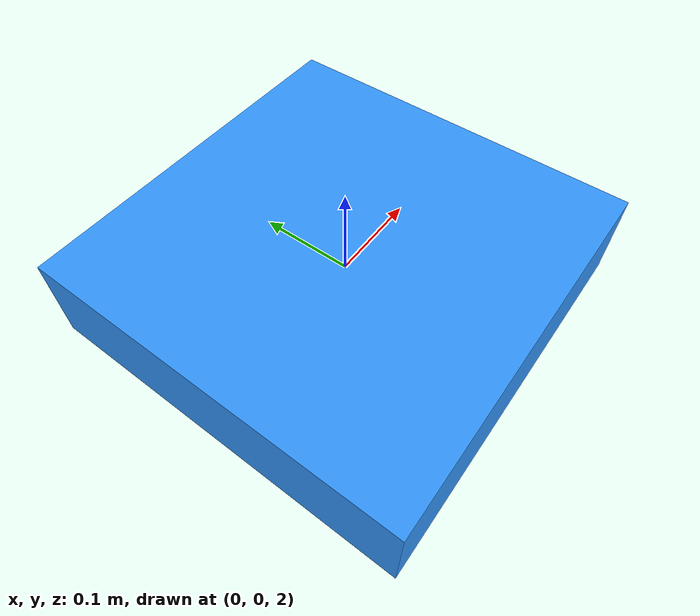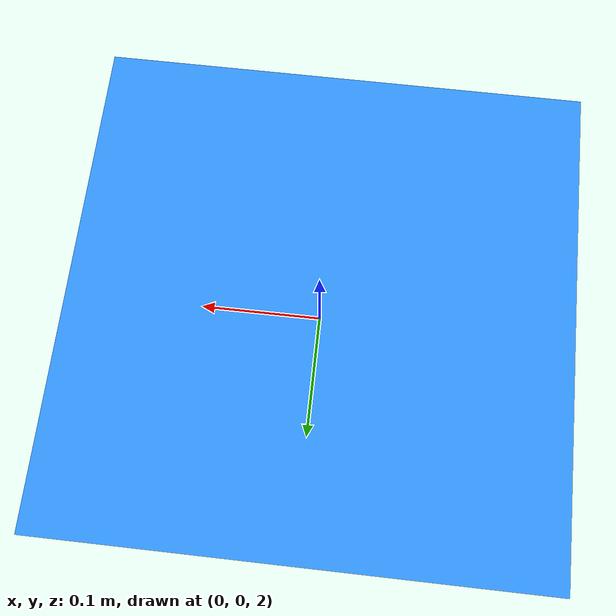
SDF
<?xml version="1.0"?>
<sdf version="1.10">
  <world name="aegisfleet_base">

    <plugin filename="gz-sim-physics-system"
            name="gz::sim::systems::Physics"/>
    <plugin filename="gz-sim-user-commands-system"
            name="gz::sim::systems::UserCommands"/>
    <plugin filename="gz-sim-scene-broadcaster-system"
            name="gz::sim::systems::SceneBroadcaster"/>
    <plugin filename="gz-sim-sensors-system"
            name="gz::sim::systems::Sensors">
      <render_engine>ogre2</render_engine>
    </plugin>

    <light type="directional" name="sun">
      <cast_shadows>true</cast_shadows>
      <pose>0 0 10 0 0 0</pose>
      <diffuse>1 1 1 1</diffuse>
      <direction>-0.5 0.1 -0.9</direction>
    </light>

    <model name="ground_plane">
      <static>true</static>
      <link name="link">
        <collision name="collision">
          <geometry>
            <plane><normal>0 0 1</normal><size>200 200</size></plane>
          </geometry>
        </collision>
        <visual name="visual">
          <geometry>
            <plane><normal>0 0 1</normal><size>200 200</size></plane>
          </geometry>
          <material>
            <ambient>0.4 0.4 0.4 1</ambient>
            <diffuse>0.4 0.4 0.4 1</diffuse>
          </material>
        </visual>
      </link>
    </model>

    <include>
      <uri>model://uav</uri>
      <name>uav_0</name>
      <pose>0 0 2 0 0 0</pose>
    </include>

  </world>
</sdf>

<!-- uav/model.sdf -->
<sdf version="1.10">
  <model name="uav">
    <pose>0 0 0.2 0 0 0</pose>

    <link name="base_link">
      <inertial>
        <mass>1.5</mass>
        <inertia>
          <ixx>0.4</ixx><iyy>0.4</iyy><izz>0.8</izz>
          <ixy>0</ixy><ixz>0</ixz><iyz>0</iyz>
        </inertia>
      </inertial>

      <visual name="body_visual">
        <geometry><box><size>0.4 0.4 0.1</size></box></geometry>
        <material>
          <ambient>0.2 0.6 1.0 1</ambient>
          <diffuse>0.2 0.6 1.0 1</diffuse>
        </material>
      </visual>

      <collision name="body_collision">
        <geometry><box><size>0.4 0.4 0.1</size></box></geometry>
      </collision>

      <sensor name="imu" type="imu">
        <always_on>true</always_on>
        <update_rate>200</update_rate>
        <topic>imu</topic>
        <imu><angular_velocity/><linear_acceleration/></imu>
      </sensor>

    </link>

    <plugin
      filename="gz-sim-velocity-control-system"
      name="gz::sim::systems::VelocityControl">
      <initial_linear>0 0 0</initial_linear>
      <initial_angular>0 0 0</initial_angular>
    </plugin>

    <plugin
      filename="gz-sim-pose-publisher-system"
      name="gz::sim::systems::PosePublisher">
      <publish_link_pose>true</publish_link_pose>
      <publish_nested_model_pose>false</publish_nested_model_pose>
      <update_rate>50</update_rate>
    </plugin>

  </model>
</sdf>
